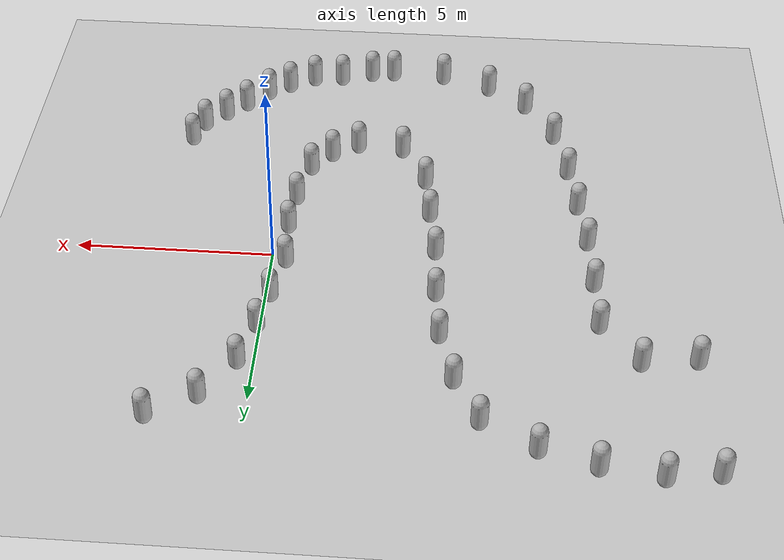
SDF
<sdf version="1.10">
 <world name="empty">
  <model name="ground_plane">
   <static>true</static>
   <link name="link">
    <collision name="collision">
     <geometry><plane><normal>0 0 1</normal><size>100 100</size></plane></geometry>
    </collision>
    <visual name="visual">
     <geometry><plane><normal>0 0 1</normal><size>100 100</size></plane></geometry>
     <material>
      <ambient>0.800000012 0.800000012 0.800000012 1</ambient>
      <diffuse>0.800000012 0.800000012 0.800000012 1</diffuse>
      <specular>0.800000012 0.800000012 0.800000012 1</specular>
     </material>
    </visual>
    <inertial>
     <mass>1</mass>
     <inertia><ixx>1</ixx><ixy>0</ixy><ixz>0</ixz><iyy>1</iyy><iyz>0</iyz><izz>1</izz></inertia>
    </inertial>
   </link>
  </model>
  <model name="capsule_22">
   <pose>2.2410211586859279 5.8455925256962518 0.49999999970893311 0 0 0</pose>
   <link name="capsule_link">
    <inertial>
     <inertia>
      <ixx>0.074153999999999998</ixx>
      <ixy>0</ixy>
      <ixz>0</ixz>
      <iyy>0.074153999999999998</iyy>
      <iyz>0</iyz>
      <izz>0.018769000000000001</izz>
     </inertia>
     <mass>1</mass>
    </inertial>
    <collision name="capsule_collision">
     <geometry>
      <capsule><radius>0.20000000000000001</radius><length>0.59999999999999998</length></capsule>
     </geometry>
    </collision>
    <visual name="capsule_visual">
     <geometry>
      <capsule><radius>0.20000000000000001</radius><length>0.59999999999999998</length></capsule>
     </geometry>
     <material>
      <ambient>0.300000012 0.300000012 0.300000012 1</ambient>
      <diffuse>0.699999988 0.699999988 0.699999988 1</diffuse>
      <specular>1 1 1 1</specular>
     </material>
    </visual>
   </link>
   <static>false</static>
  </model>
  <model name="capsule_23">
   <pose>1.1205332928616789 5.148689651645503 0.49999999970893311 0 0 0</pose>
   <link name="capsule_link">
    <inertial>
     <inertia>
      <ixx>0.074153999999999998</ixx>
      <ixy>0</ixy>
      <ixz>0</ixz>
      <iyy>0.074153999999999998</iyy>
      <iyz>0</iyz>
      <izz>0.018769000000000001</izz>
     </inertia>
     <mass>1</mass>
    </inertial>
    <collision name="capsule_collision">
     <geometry>
      <capsule><radius>0.20000000000000001</radius><length>0.59999999999999998</length></capsule>
     </geometry>
    </collision>
    <visual name="capsule_visual">
     <geometry>
      <capsule><radius>0.20000000000000001</radius><length>0.59999999999999998</length></capsule>
     </geometry>
     <material>
      <ambient>0.300000012 0.300000012 0.300000012 1</ambient>
      <diffuse>0.699999988 0.699999988 0.699999988 1</diffuse>
      <specular>1 1 1 1</specular>
     </material>
    </visual>
   </link>
   <static>false</static>
  </model>
  <model name="capsule_24">
   <pose>0.36715474724769592 3.9862101078033447 0.499999999902001 0 0 0</pose>
   <link name="capsule_link">
    <inertial>
     <inertia>
      <ixx>0.074153999999999998</ixx>
      <ixy>0</ixy>
      <ixz>0</ixz>
      <iyy>0.074153999999999998</iyy>
      <iyz>0</iyz>
      <izz>0.018769000000000001</izz>
     </inertia>
     <mass>1</mass>
    </inertial>
    <collision name="capsule_collision">
     <geometry>
      <capsule><radius>0.20000000000000001</radius><length>0.59999999999999998</length></capsule>
     </geometry>
    </collision>
    <visual name="capsule_visual">
     <geometry>
      <capsule><radius>0.20000000000000001</radius><length>0.59999999999999998</length></capsule>
     </geometry>
     <material>
      <ambient>0.300000012 0.300000012 0.300000012 1</ambient>
      <diffuse>0.699999988 0.699999988 0.699999988 1</diffuse>
      <specular>1 1 1 1</specular>
     </material>
    </visual>
   </link>
   <static>false</static>
  </model>
  <model name="capsule_25">
   <pose>0.054870724678039551 2.7515799999237061 0.499999999902001 0 0 0</pose>
   <link name="capsule_link">
    <inertial>
     <inertia>
      <ixx>0.074153999999999998</ixx>
      <ixy>0</ixy>
      <ixz>0</ixz>
      <iyy>0.074153999999999998</iyy>
      <iyz>0</iyz>
      <izz>0.018769000000000001</izz>
     </inertia>
     <mass>1</mass>
    </inertial>
    <collision name="capsule_collision">
     <geometry>
      <capsule><radius>0.20000000000000001</radius><length>0.59999999999999998</length></capsule>
     </geometry>
    </collision>
    <visual name="capsule_visual">
     <geometry>
      <capsule><radius>0.20000000000000001</radius><length>0.59999999999999998</length></capsule>
     </geometry>
     <material>
      <ambient>0.300000012 0.300000012 0.300000012 1</ambient>
      <diffuse>0.699999988 0.699999988 0.699999988 1</diffuse>
      <specular>1 1 1 1</specular>
     </material>
    </visual>
   </link>
   <static>false</static>
  </model>
  <model name="capsule_26">
   <pose>-0.14112371206283569 1.6486799716949463 0.499999999902001 0 0 0</pose>
   <link name="capsule_link">
    <inertial>
     <inertia>
      <ixx>0.074153999999999998</ixx>
      <ixy>0</ixy>
      <ixz>0</ixz>
      <iyy>0.074153999999999998</iyy>
      <iyz>0</iyz>
      <izz>0.018769000000000001</izz>
     </inertia>
     <mass>1</mass>
    </inertial>
    <collision name="capsule_collision">
     <geometry>
      <capsule><radius>0.20000000000000001</radius><length>0.59999999999999998</length></capsule>
     </geometry>
    </collision>
    <visual name="capsule_visual">
     <geometry>
      <capsule><radius>0.20000000000000001</radius><length>0.59999999999999998</length></capsule>
     </geometry>
     <material>
      <ambient>0.300000012 0.300000012 0.300000012 1</ambient>
      <diffuse>0.699999988 0.699999988 0.699999988 1</diffuse>
      <specular>1 1 1 1</specular>
     </material>
    </visual>
   </link>
   <static>false</static>
  </model>
  <model name="capsule_28">
   <pose>-0.30919864773750305 -0.95390701293945312 0.499999999902001 0 0 0</pose>
   <link name="capsule_link">
    <inertial>
     <inertia>
      <ixx>0.074153999999999998</ixx>
      <ixy>0</ixy>
      <ixz>0</ixz>
      <iyy>0.074153999999999998</iyy>
      <iyz>0</iyz>
      <izz>0.018769000000000001</izz>
     </inertia>
     <mass>1</mass>
    </inertial>
    <collision name="capsule_collision">
     <geometry>
      <capsule><radius>0.20000000000000001</radius><length>0.59999999999999998</length></capsule>
     </geometry>
    </collision>
    <visual name="capsule_visual">
     <geometry>
      <capsule><radius>0.20000000000000001</radius><length>0.59999999999999998</length></capsule>
     </geometry>
     <material>
      <ambient>0.300000012 0.300000012 0.300000012 1</ambient>
      <diffuse>0.699999988 0.699999988 0.699999988 1</diffuse>
      <specular>1 1 1 1</specular>
     </material>
    </visual>
   </link>
   <static>false</static>
  </model>
  <model name="capsule_29">
   <pose>-0.40292990153900821 -2.1101880470823815 0.49999999970893311 0 0 0</pose>
   <link name="capsule_link">
    <inertial>
     <inertia>
      <ixx>0.074153999999999998</ixx>
      <ixy>0</ixy>
      <ixz>0</ixz>
      <iyy>0.074153999999999998</iyy>
      <iyz>0</iyz>
      <izz>0.018769000000000001</izz>
     </inertia>
     <mass>1</mass>
    </inertial>
    <collision name="capsule_collision">
     <geometry>
      <capsule><radius>0.20000000000000001</radius><length>0.59999999999999998</length></capsule>
     </geometry>
    </collision>
    <visual name="capsule_visual">
     <geometry>
      <capsule><radius>0.20000000000000001</radius><length>0.59999999999999998</length></capsule>
     </geometry>
     <material>
      <ambient>0.300000012 0.300000012 0.300000012 1</ambient>
      <diffuse>0.699999988 0.699999988 0.699999988 1</diffuse>
      <specular>1 1 1 1</specular>
     </material>
    </visual>
   </link>
   <static>false</static>
  </model>
  <model name="capsule_30">
   <pose>-0.66683764251256505 -3.3827567634728442 0.49999999970893311 0 0 0</pose>
   <link name="capsule_link">
    <inertial>
     <inertia>
      <ixx>0.074153999999999998</ixx>
      <ixy>0</ixy>
      <ixz>0</ixz>
      <iyy>0.074153999999999998</iyy>
      <iyz>0</iyz>
      <izz>0.018769000000000001</izz>
     </inertia>
     <mass>1</mass>
    </inertial>
    <collision name="capsule_collision">
     <geometry>
      <capsule><radius>0.20000000000000001</radius><length>0.59999999999999998</length></capsule>
     </geometry>
    </collision>
    <visual name="capsule_visual">
     <geometry>
      <capsule><radius>0.20000000000000001</radius><length>0.59999999999999998</length></capsule>
     </geometry>
     <material>
      <ambient>0.300000012 0.300000012 0.300000012 1</ambient>
      <diffuse>0.699999988 0.699999988 0.699999988 1</diffuse>
      <specular>1 1 1 1</specular>
     </material>
    </visual>
   </link>
   <static>false</static>
  </model>
  <model name="capsule_31">
   <pose>-1.8538862618608611 -4.4385699608616376 0.49999999970893311 0 0 0</pose>
   <link name="capsule_link">
    <inertial>
     <inertia>
      <ixx>0.074153999999999998</ixx>
      <ixy>0</ixy>
      <ixz>0</ixz>
      <iyy>0.074153999999999998</iyy>
      <iyz>0</iyz>
      <izz>0.018769000000000001</izz>
     </inertia>
     <mass>1</mass>
    </inertial>
    <collision name="capsule_collision">
     <geometry>
      <capsule><radius>0.20000000000000001</radius><length>0.59999999999999998</length></capsule>
     </geometry>
    </collision>
    <visual name="capsule_visual">
     <geometry>
      <capsule><radius>0.20000000000000001</radius><length>0.59999999999999998</length></capsule>
     </geometry>
     <material>
      <ambient>0.300000012 0.300000012 0.300000012 1</ambient>
      <diffuse>0.699999988 0.699999988 0.699999988 1</diffuse>
      <specular>1 1 1 1</specular>
     </material>
    </visual>
   </link>
   <static>false</static>
  </model>
  <model name="capsule_32">
   <pose>-3.0619314543279872 -4.3157870934911537 0.49999999970893311 0 0 0</pose>
   <link name="capsule_link">
    <inertial>
     <inertia>
      <ixx>0.074153999999999998</ixx>
      <ixy>0</ixy>
      <ixz>0</ixz>
      <iyy>0.074153999999999998</iyy>
      <iyz>0</iyz>
      <izz>0.018769000000000001</izz>
     </inertia>
     <mass>1</mass>
    </inertial>
    <collision name="capsule_collision">
     <geometry>
      <capsule><radius>0.20000000000000001</radius><length>0.59999999999999998</length></capsule>
     </geometry>
    </collision>
    <visual name="capsule_visual">
     <geometry>
      <capsule><radius>0.20000000000000001</radius><length>0.59999999999999998</length></capsule>
     </geometry>
     <material>
      <ambient>0.300000012 0.300000012 0.300000012 1</ambient>
      <diffuse>0.699999988 0.699999988 0.699999988 1</diffuse>
      <specular>1 1 1 1</specular>
     </material>
    </visual>
   </link>
   <static>false</static>
  </model>
  <model name="capsule_33">
   <pose>-3.7359690886875785 -3.0206758947746262 0.49999999970893311 0 0 0</pose>
   <link name="capsule_link">
    <inertial>
     <inertia>
      <ixx>0.074153999999999998</ixx>
      <ixy>0</ixy>
      <ixz>0</ixz>
      <iyy>0.074153999999999998</iyy>
      <iyz>0</iyz>
      <izz>0.018769000000000001</izz>
     </inertia>
     <mass>1</mass>
    </inertial>
    <collision name="capsule_collision">
     <geometry>
      <capsule><radius>0.20000000000000001</radius><length>0.59999999999999998</length></capsule>
     </geometry>
    </collision>
    <visual name="capsule_visual">
     <geometry>
      <capsule><radius>0.20000000000000001</radius><length>0.59999999999999998</length></capsule>
     </geometry>
     <material>
      <ambient>0.300000012 0.300000012 0.300000012 1</ambient>
      <diffuse>0.699999988 0.699999988 0.699999988 1</diffuse>
      <specular>1 1 1 1</specular>
     </material>
    </visual>
   </link>
   <static>false</static>
  </model>
  <model name="capsule_34">
   <pose>-3.9136007308902969 -1.6616885756400075 0.49999999970893311 0 0 0</pose>
   <link name="capsule_link">
    <inertial>
     <inertia>
      <ixx>0.074153999999999998</ixx>
      <ixy>0</ixy>
      <ixz>0</ixz>
      <iyy>0.074153999999999998</iyy>
      <iyz>0</iyz>
      <izz>0.018769000000000001</izz>
     </inertia>
     <mass>1</mass>
    </inertial>
    <collision name="capsule_collision">
     <geometry>
      <capsule><radius>0.20000000000000001</radius><length>0.59999999999999998</length></capsule>
     </geometry>
    </collision>
    <visual name="capsule_visual">
     <geometry>
      <capsule><radius>0.20000000000000001</radius><length>0.59999999999999998</length></capsule>
     </geometry>
     <material>
      <ambient>0.300000012 0.300000012 0.300000012 1</ambient>
      <diffuse>0.699999988 0.699999988 0.699999988 1</diffuse>
      <specular>1 1 1 1</specular>
     </material>
    </visual>
   </link>
   <static>false</static>
  </model>
  <model name="capsule_35">
   <pose>-4.111023931562845 -0.20660173922643699 0.49999999970893311 0 0 0</pose>
   <link name="capsule_link">
    <inertial>
     <inertia>
      <ixx>0.074153999999999998</ixx>
      <ixy>0</ixy>
      <ixz>0</ixz>
      <iyy>0.074153999999999998</iyy>
      <iyz>0</iyz>
      <izz>0.018769000000000001</izz>
     </inertia>
     <mass>1</mass>
    </inertial>
    <collision name="capsule_collision">
     <geometry>
      <capsule><radius>0.20000000000000001</radius><length>0.59999999999999998</length></capsule>
     </geometry>
    </collision>
    <visual name="capsule_visual">
     <geometry>
      <capsule><radius>0.20000000000000001</radius><length>0.59999999999999998</length></capsule>
     </geometry>
     <material>
      <ambient>0.300000012 0.300000012 0.300000012 1</ambient>
      <diffuse>0.699999988 0.699999988 0.699999988 1</diffuse>
      <specular>1 1 1 1</specular>
     </material>
    </visual>
   </link>
   <static>false</static>
  </model>
  <model name="capsule_36">
   <pose>-4.1761549505182636 1.3268821165121976 0.49999999970893311 0 0 0</pose>
   <link name="capsule_link">
    <inertial>
     <inertia>
      <ixx>0.074153999999999998</ixx>
      <ixy>0</ixy>
      <ixz>0</ixz>
      <iyy>0.074153999999999998</iyy>
      <iyz>0</iyz>
      <izz>0.018769000000000001</izz>
     </inertia>
     <mass>1</mass>
    </inertial>
    <collision name="capsule_collision">
     <geometry>
      <capsule><radius>0.20000000000000001</radius><length>0.59999999999999998</length></capsule>
     </geometry>
    </collision>
    <visual name="capsule_visual">
     <geometry>
      <capsule><radius>0.20000000000000001</radius><length>0.59999999999999998</length></capsule>
     </geometry>
     <material>
      <ambient>0.300000012 0.300000012 0.300000012 1</ambient>
      <diffuse>0.699999988 0.699999988 0.699999988 1</diffuse>
      <specular>1 1 1 1</specular>
     </material>
    </visual>
   </link>
   <static>false</static>
  </model>
  <model name="capsule_37">
   <pose>-4.3167518290005216 2.7823156699431575 0.49999999970893311 0 0 0</pose>
   <link name="capsule_link">
    <inertial>
     <inertia>
      <ixx>0.074153999999999998</ixx>
      <ixy>0</ixy>
      <ixz>0</ixz>
      <iyy>0.074153999999999998</iyy>
      <iyz>0</iyz>
      <izz>0.018769000000000001</izz>
     </inertia>
     <mass>1</mass>
    </inertial>
    <collision name="capsule_collision">
     <geometry>
      <capsule><radius>0.20000000000000001</radius><length>0.59999999999999998</length></capsule>
     </geometry>
    </collision>
    <visual name="capsule_visual">
     <geometry>
      <capsule><radius>0.20000000000000001</radius><length>0.59999999999999998</length></capsule>
     </geometry>
     <material>
      <ambient>0.300000012 0.300000012 0.300000012 1</ambient>
      <diffuse>0.699999988 0.699999988 0.699999988 1</diffuse>
      <specular>1 1 1 1</specular>
     </material>
    </visual>
   </link>
   <static>false</static>
  </model>
  <model name="capsule_38">
   <pose>2.4606900215148926 -5.1342496871948242 0.499999999902001 0 0 0</pose>
   <link name="capsule_link">
    <inertial>
     <inertia>
      <ixx>0.074153999999999998</ixx>
      <ixy>0</ixy>
      <ixz>0</ixz>
      <iyy>0.074153999999999998</iyy>
      <iyz>0</iyz>
      <izz>0.018769000000000001</izz>
     </inertia>
     <mass>1</mass>
    </inertial>
    <collision name="capsule_collision">
     <geometry>
      <capsule><radius>0.20000000000000001</radius><length>0.59999999999999998</length></capsule>
     </geometry>
    </collision>
    <visual name="capsule_visual">
     <geometry>
      <capsule><radius>0.20000000000000001</radius><length>0.59999999999999998</length></capsule>
     </geometry>
     <material>
      <ambient>0.300000012 0.300000012 0.300000012 1</ambient>
      <diffuse>0.699999988 0.699999988 0.699999988 1</diffuse>
      <specular>1 1 1 1</specular>
     </material>
    </visual>
   </link>
   <static>false</static>
  </model>
  <model name="capsule_39">
   <pose>1.4277786796006073 -6.136858015472157 0.49999999970893311 0 0 0</pose>
   <link name="capsule_link">
    <inertial>
     <inertia>
      <ixx>0.074153999999999998</ixx>
      <ixy>0</ixy>
      <ixz>0</ixz>
      <iyy>0.074153999999999998</iyy>
      <iyz>0</iyz>
      <izz>0.018769000000000001</izz>
     </inertia>
     <mass>1</mass>
    </inertial>
    <collision name="capsule_collision">
     <geometry>
      <capsule><radius>0.20000000000000001</radius><length>0.59999999999999998</length></capsule>
     </geometry>
    </collision>
    <visual name="capsule_visual">
     <geometry>
      <capsule><radius>0.20000000000000001</radius><length>0.59999999999999998</length></capsule>
     </geometry>
     <material>
      <ambient>0.300000012 0.300000012 0.300000012 1</ambient>
      <diffuse>0.699999988 0.699999988 0.699999988 1</diffuse>
      <specular>1 1 1 1</specular>
     </material>
    </visual>
   </link>
   <static>false</static>
  </model>
  <model name="capsule_40">
   <pose>0.30902623896461634 -7.1213518557991984 0.49999999970893311 0 0 0</pose>
   <link name="capsule_link">
    <inertial>
     <inertia>
      <ixx>0.074153999999999998</ixx>
      <ixy>0</ixy>
      <ixz>0</ixz>
      <iyy>0.074153999999999998</iyy>
      <iyz>0</iyz>
      <izz>0.018769000000000001</izz>
     </inertia>
     <mass>1</mass>
    </inertial>
    <collision name="capsule_collision">
     <geometry>
      <capsule><radius>0.20000000000000001</radius><length>0.59999999999999998</length></capsule>
     </geometry>
    </collision>
    <visual name="capsule_visual">
     <geometry>
      <capsule><radius>0.20000000000000001</radius><length>0.59999999999999998</length></capsule>
     </geometry>
     <material>
      <ambient>0.300000012 0.300000012 0.300000012 1</ambient>
      <diffuse>0.699999988 0.699999988 0.699999988 1</diffuse>
      <specular>1 1 1 1</specular>
     </material>
    </visual>
   </link>
   <static>false</static>
  </model>
  <model name="capsule_41">
   <pose>-1.1491758737618332 -7.5851104395704372 0.49999999970893311 0 0 0</pose>
   <link name="capsule_link">
    <inertial>
     <inertia>
      <ixx>0.074153999999999998</ixx>
      <ixy>0</ixy>
      <ixz>0</ixz>
      <iyy>0.074153999999999998</iyy>
      <iyz>0</iyz>
      <izz>0.018769000000000001</izz>
     </inertia>
     <mass>1</mass>
    </inertial>
    <collision name="capsule_collision">
     <geometry>
      <capsule><radius>0.20000000000000001</radius><length>0.59999999999999998</length></capsule>
     </geometry>
    </collision>
    <visual name="capsule_visual">
     <geometry>
      <capsule><radius>0.20000000000000001</radius><length>0.59999999999999998</length></capsule>
     </geometry>
     <material>
      <ambient>0.300000012 0.300000012 0.300000012 1</ambient>
      <diffuse>0.699999988 0.699999988 0.699999988 1</diffuse>
      <specular>1 1 1 1</specular>
     </material>
    </visual>
   </link>
   <static>false</static>
  </model>
  <model name="capsule_42">
   <pose>-2.6087609474039706 -7.9117986359347228 0.49999999970893311 0 0 0</pose>
   <link name="capsule_link">
    <inertial>
     <inertia>
      <ixx>0.074153999999999998</ixx>
      <ixy>0</ixy>
      <ixz>0</ixz>
      <iyy>0.074153999999999998</iyy>
      <iyz>0</iyz>
      <izz>0.018769000000000001</izz>
     </inertia>
     <mass>1</mass>
    </inertial>
    <collision name="capsule_collision">
     <geometry>
      <capsule><radius>0.20000000000000001</radius><length>0.59999999999999998</length></capsule>
     </geometry>
    </collision>
    <visual name="capsule_visual">
     <geometry>
      <capsule><radius>0.20000000000000001</radius><length>0.59999999999999998</length></capsule>
     </geometry>
     <material>
      <ambient>0.300000012 0.300000012 0.300000012 1</ambient>
      <diffuse>0.699999988 0.699999988 0.699999988 1</diffuse>
      <specular>1 1 1 1</specular>
     </material>
    </visual>
   </link>
   <static>false</static>
  </model>
  <model name="capsule_43">
   <pose>-4.0454748396139184 -7.8492872725995255 0.49999999970893311 0 0 0</pose>
   <link name="capsule_link">
    <inertial>
     <inertia>
      <ixx>0.074153999999999998</ixx>
      <ixy>0</ixy>
      <ixz>0</ixz>
      <iyy>0.074153999999999998</iyy>
      <iyz>0</iyz>
      <izz>0.018769000000000001</izz>
     </inertia>
     <mass>1</mass>
    </inertial>
    <collision name="capsule_collision">
     <geometry>
      <capsule><radius>0.20000000000000001</radius><length>0.59999999999999998</length></capsule>
     </geometry>
    </collision>
    <visual name="capsule_visual">
     <geometry>
      <capsule><radius>0.20000000000000001</radius><length>0.59999999999999998</length></capsule>
     </geometry>
     <material>
      <ambient>0.300000012 0.300000012 0.300000012 1</ambient>
      <diffuse>0.699999988 0.699999988 0.699999988 1</diffuse>
      <specular>1 1 1 1</specular>
     </material>
    </visual>
   </link>
   <static>false</static>
  </model>
  <model name="capsule_44">
   <pose>-5.3499430014965945 -7.3704719539631158 0.49999999970893311 0 0 0</pose>
   <link name="capsule_link">
    <inertial>
     <inertia>
      <ixx>0.074153999999999998</ixx>
      <ixy>0</ixy>
      <ixz>0</ixz>
      <iyy>0.074153999999999998</iyy>
      <iyz>0</iyz>
      <izz>0.018769000000000001</izz>
     </inertia>
     <mass>1</mass>
    </inertial>
    <collision name="capsule_collision">
     <geometry>
      <capsule><radius>0.20000000000000001</radius><length>0.59999999999999998</length></capsule>
     </geometry>
    </collision>
    <visual name="capsule_visual">
     <geometry>
      <capsule><radius>0.20000000000000001</radius><length>0.59999999999999998</length></capsule>
     </geometry>
     <material>
      <ambient>0.300000012 0.300000012 0.300000012 1</ambient>
      <diffuse>0.699999988 0.699999988 0.699999988 1</diffuse>
      <specular>1 1 1 1</specular>
     </material>
    </visual>
   </link>
   <static>false</static>
  </model>
  <model name="capsule_45">
   <pose>-6.3835868845907884 -6.5850210009494328 0.49999999970893311 0 0 0</pose>
   <link name="capsule_link">
    <inertial>
     <inertia>
      <ixx>0.074153999999999998</ixx>
      <ixy>0</ixy>
      <ixz>0</ixz>
      <iyy>0.074153999999999998</iyy>
      <iyz>0</iyz>
      <izz>0.018769000000000001</izz>
     </inertia>
     <mass>1</mass>
    </inertial>
    <collision name="capsule_collision">
     <geometry>
      <capsule><radius>0.20000000000000001</radius><length>0.59999999999999998</length></capsule>
     </geometry>
    </collision>
    <visual name="capsule_visual">
     <geometry>
      <capsule><radius>0.20000000000000001</radius><length>0.59999999999999998</length></capsule>
     </geometry>
     <material>
      <ambient>0.300000012 0.300000012 0.300000012 1</ambient>
      <diffuse>0.699999988 0.699999988 0.699999988 1</diffuse>
      <specular>1 1 1 1</specular>
     </material>
    </visual>
   </link>
   <static>false</static>
  </model>
  <model name="capsule_46">
   <pose>-7.151202088566734 -5.24470062890338 0.49999999970893311 0 0 0</pose>
   <link name="capsule_link">
    <inertial>
     <inertia>
      <ixx>0.074153999999999998</ixx>
      <ixy>0</ixy>
      <ixz>0</ixz>
      <iyy>0.074153999999999998</iyy>
      <iyz>0</iyz>
      <izz>0.018769000000000001</izz>
     </inertia>
     <mass>1</mass>
    </inertial>
    <collision name="capsule_collision">
     <geometry>
      <capsule><radius>0.20000000000000001</radius><length>0.59999999999999998</length></capsule>
     </geometry>
    </collision>
    <visual name="capsule_visual">
     <geometry>
      <capsule><radius>0.20000000000000001</radius><length>0.59999999999999998</length></capsule>
     </geometry>
     <material>
      <ambient>0.300000012 0.300000012 0.300000012 1</ambient>
      <diffuse>0.699999988 0.699999988 0.699999988 1</diffuse>
      <specular>1 1 1 1</specular>
     </material>
    </visual>
   </link>
   <static>false</static>
  </model>
  <model name="capsule_47">
   <pose>-7.5092744102022229 -3.7053056780459031 0.49999999970893311 0 0 0</pose>
   <link name="capsule_link">
    <inertial>
     <inertia>
      <ixx>0.074153999999999998</ixx>
      <ixy>0</ixy>
      <ixz>0</ixz>
      <iyy>0.074153999999999998</iyy>
      <iyz>0</iyz>
      <izz>0.018769000000000001</izz>
     </inertia>
     <mass>1</mass>
    </inertial>
    <collision name="capsule_collision">
     <geometry>
      <capsule><radius>0.20000000000000001</radius><length>0.59999999999999998</length></capsule>
     </geometry>
    </collision>
    <visual name="capsule_visual">
     <geometry>
      <capsule><radius>0.20000000000000001</radius><length>0.59999999999999998</length></capsule>
     </geometry>
     <material>
      <ambient>0.300000012 0.300000012 0.300000012 1</ambient>
      <diffuse>0.699999988 0.699999988 0.699999988 1</diffuse>
      <specular>1 1 1 1</specular>
     </material>
    </visual>
   </link>
   <static>false</static>
  </model>
  <model name="capsule_48">
   <pose>-7.7253568550493883 -2.2453464417871847 0.49999999970893311 0 0 0</pose>
   <link name="capsule_link">
    <inertial>
     <inertia>
      <ixx>0.074153999999999998</ixx>
      <ixy>0</ixy>
      <ixz>0</ixz>
      <iyy>0.074153999999999998</iyy>
      <iyz>0</iyz>
      <izz>0.018769000000000001</izz>
     </inertia>
     <mass>1</mass>
    </inertial>
    <collision name="capsule_collision">
     <geometry>
      <capsule><radius>0.20000000000000001</radius><length>0.59999999999999998</length></capsule>
     </geometry>
    </collision>
    <visual name="capsule_visual">
     <geometry>
      <capsule><radius>0.20000000000000001</radius><length>0.59999999999999998</length></capsule>
     </geometry>
     <material>
      <ambient>0.300000012 0.300000012 0.300000012 1</ambient>
      <diffuse>0.699999988 0.699999988 0.699999988 1</diffuse>
      <specular>1 1 1 1</specular>
     </material>
    </visual>
   </link>
   <static>false</static>
  </model>
  <model name="capsule_49">
   <pose>-7.9444842494851269 -0.84214427424519833 0.49999999970893311 0 0 0</pose>
   <link name="capsule_link">
    <inertial>
     <inertia>
      <ixx>0.074153999999999998</ixx>
      <ixy>0</ixy>
      <ixz>0</ixz>
      <iyy>0.074153999999999998</iyy>
      <iyz>0</iyz>
      <izz>0.018769000000000001</izz>
     </inertia>
     <mass>1</mass>
    </inertial>
    <collision name="capsule_collision">
     <geometry>
      <capsule><radius>0.20000000000000001</radius><length>0.59999999999999998</length></capsule>
     </geometry>
    </collision>
    <visual name="capsule_visual">
     <geometry>
      <capsule><radius>0.20000000000000001</radius><length>0.59999999999999998</length></capsule>
     </geometry>
     <material>
      <ambient>0.300000012 0.300000012 0.300000012 1</ambient>
      <diffuse>0.699999988 0.699999988 0.699999988 1</diffuse>
      <specular>1 1 1 1</specular>
     </material>
    </visual>
   </link>
   <static>false</static>
  </model>
  <model name="capsule_50">
   <pose>-8.0543399608816379 0.70126440235399068 0.49999999970893311 0 0 0</pose>
   <link name="capsule_link">
    <inertial>
     <inertia>
      <ixx>0.074153999999999998</ixx>
      <ixy>0</ixy>
      <ixz>0</ixz>
      <iyy>0.074153999999999998</iyy>
      <iyz>0</iyz>
      <izz>0.018769000000000001</izz>
     </inertia>
     <mass>1</mass>
    </inertial>
    <collision name="capsule_collision">
     <geometry>
      <capsule><radius>0.20000000000000001</radius><length>0.59999999999999998</length></capsule>
     </geometry>
    </collision>
    <visual name="capsule_visual">
     <geometry>
      <capsule><radius>0.20000000000000001</radius><length>0.59999999999999998</length></capsule>
     </geometry>
     <material>
      <ambient>0.300000012 0.300000012 0.300000012 1</ambient>
      <diffuse>0.699999988 0.699999988 0.699999988 1</diffuse>
      <specular>1 1 1 1</specular>
     </material>
    </visual>
   </link>
   <static>false</static>
  </model>
  <model name="capsule_51">
   <pose>-8.133668301421551 2.1621473446861521 0.49999999970893311 0 0 0</pose>
   <link name="capsule_link">
    <inertial>
     <inertia>
      <ixx>0.074153999999999998</ixx>
      <ixy>0</ixy>
      <ixz>0</ixz>
      <iyy>0.074153999999999998</iyy>
      <iyz>0</iyz>
      <izz>0.018769000000000001</izz>
     </inertia>
     <mass>1</mass>
    </inertial>
    <collision name="capsule_collision">
     <geometry>
      <capsule><radius>0.20000000000000001</radius><length>0.59999999999999998</length></capsule>
     </geometry>
    </collision>
    <visual name="capsule_visual">
     <geometry>
      <capsule><radius>0.20000000000000001</radius><length>0.59999999999999998</length></capsule>
     </geometry>
     <material>
      <ambient>0.300000012 0.300000012 0.300000012 1</ambient>
      <diffuse>0.699999988 0.699999988 0.699999988 1</diffuse>
      <specular>1 1 1 1</specular>
     </material>
    </visual>
   </link>
   <static>false</static>
  </model>
  <model name="capsule_52">
   <pose>-9.0635232539598647 3.3592041852973571 0.49999999970893311 0 0 0</pose>
   <link name="capsule_link">
    <inertial>
     <inertia>
      <ixx>0.074153999999999998</ixx>
      <ixy>0</ixy>
      <ixz>0</ixz>
      <iyy>0.074153999999999998</iyy>
      <iyz>0</iyz>
      <izz>0.018769000000000001</izz>
     </inertia>
     <mass>1</mass>
    </inertial>
    <collision name="capsule_collision">
     <geometry>
      <capsule><radius>0.20000000000000001</radius><length>0.59999999999999998</length></capsule>
     </geometry>
    </collision>
    <visual name="capsule_visual">
     <geometry>
      <capsule><radius>0.20000000000000001</radius><length>0.59999999999999998</length></capsule>
     </geometry>
     <material>
      <ambient>0.300000012 0.300000012 0.300000012 1</ambient>
      <diffuse>0.699999988 0.699999988 0.699999988 1</diffuse>
      <specular>1 1 1 1</specular>
     </material>
    </visual>
   </link>
   <static>false</static>
  </model>
  <model name="capsule_53">
   <pose>-10.406988290166627 3.1960569281330056 0.49999999970893311 0 0 0</pose>
   <link name="capsule_link">
    <inertial>
     <inertia>
      <ixx>0.074153999999999998</ixx>
      <ixy>0</ixy>
      <ixz>0</ixz>
      <iyy>0.074153999999999998</iyy>
      <iyz>0</iyz>
      <izz>0.018769000000000001</izz>
     </inertia>
     <mass>1</mass>
    </inertial>
    <collision name="capsule_collision">
     <geometry>
      <capsule><radius>0.20000000000000001</radius><length>0.59999999999999998</length></capsule>
     </geometry>
    </collision>
    <visual name="capsule_visual">
     <geometry>
      <capsule><radius>0.20000000000000001</radius><length>0.59999999999999998</length></capsule>
     </geometry>
     <material>
      <ambient>0.300000012 0.300000012 0.300000012 1</ambient>
      <diffuse>0.699999988 0.699999988 0.699999988 1</diffuse>
      <specular>1 1 1 1</specular>
     </material>
    </visual>
   </link>
   <static>false</static>
  </model>
  <model name="capsule_54">
   <pose>-4.6987325271913631 4.2416568152282537 0.49999999970893311 0 0 0</pose>
   <link name="capsule_link">
    <inertial>
     <inertia>
      <ixx>0.074153999999999998</ixx>
      <ixy>0</ixy>
      <ixz>0</ixz>
      <iyy>0.074153999999999998</iyy>
      <iyz>0</iyz>
      <izz>0.018769000000000001</izz>
     </inertia>
     <mass>1</mass>
    </inertial>
    <collision name="capsule_collision">
     <geometry>
      <capsule><radius>0.20000000000000001</radius><length>0.59999999999999998</length></capsule>
     </geometry>
    </collision>
    <visual name="capsule_visual">
     <geometry>
      <capsule><radius>0.20000000000000001</radius><length>0.59999999999999998</length></capsule>
     </geometry>
     <material>
      <ambient>0.300000012 0.300000012 0.300000012 1</ambient>
      <diffuse>0.699999988 0.699999988 0.699999988 1</diffuse>
      <specular>1 1 1 1</specular>
     </material>
    </visual>
   </link>
   <static>false</static>
  </model>
  <model name="capsule_55">
   <pose>-5.3272928059358069 5.4728657916276644 0.49999999970893311 0 0 0</pose>
   <link name="capsule_link">
    <inertial>
     <inertia>
      <ixx>0.074153999999999998</ixx>
      <ixy>0</ixy>
      <ixz>0</ixz>
      <iyy>0.074153999999999998</iyy>
      <iyz>0</iyz>
      <izz>0.018769000000000001</izz>
     </inertia>
     <mass>1</mass>
    </inertial>
    <collision name="capsule_collision">
     <geometry>
      <capsule><radius>0.20000000000000001</radius><length>0.59999999999999998</length></capsule>
     </geometry>
    </collision>
    <visual name="capsule_visual">
     <geometry>
      <capsule><radius>0.20000000000000001</radius><length>0.59999999999999998</length></capsule>
     </geometry>
     <material>
      <ambient>0.300000012 0.300000012 0.300000012 1</ambient>
      <diffuse>0.699999988 0.699999988 0.699999988 1</diffuse>
      <specular>1 1 1 1</specular>
     </material>
    </visual>
   </link>
   <static>false</static>
  </model>
  <model name="capsule_56">
   <pose>-6.6353722595975215 6.219936998346852 0.49999999970893311 0 0 0</pose>
   <link name="capsule_link">
    <inertial>
     <inertia>
      <ixx>0.074153999999999998</ixx>
      <ixy>0</ixy>
      <ixz>0</ixz>
      <iyy>0.074153999999999998</iyy>
      <iyz>0</iyz>
      <izz>0.018769000000000001</izz>
     </inertia>
     <mass>1</mass>
    </inertial>
    <collision name="capsule_collision">
     <geometry>
      <capsule><radius>0.20000000000000001</radius><length>0.59999999999999998</length></capsule>
     </geometry>
    </collision>
    <visual name="capsule_visual">
     <geometry>
      <capsule><radius>0.20000000000000001</radius><length>0.59999999999999998</length></capsule>
     </geometry>
     <material>
      <ambient>0.300000012 0.300000012 0.300000012 1</ambient>
      <diffuse>0.699999988 0.699999988 0.699999988 1</diffuse>
      <specular>1 1 1 1</specular>
     </material>
    </visual>
   </link>
   <static>false</static>
  </model>
  <model name="capsule_57">
   <pose>-7.9635487807413075 6.63476376183496 0.49999999970893311 0 0 0</pose>
   <link name="capsule_link">
    <inertial>
     <inertia>
      <ixx>0.074153999999999998</ixx>
      <ixy>0</ixy>
      <ixz>0</ixz>
      <iyy>0.074153999999999998</iyy>
      <iyz>0</iyz>
      <izz>0.018769000000000001</izz>
     </inertia>
     <mass>1</mass>
    </inertial>
    <collision name="capsule_collision">
     <geometry>
      <capsule><radius>0.20000000000000001</radius><length>0.59999999999999998</length></capsule>
     </geometry>
    </collision>
    <visual name="capsule_visual">
     <geometry>
      <capsule><radius>0.20000000000000001</radius><length>0.59999999999999998</length></capsule>
     </geometry>
     <material>
      <ambient>0.300000012 0.300000012 0.300000012 1</ambient>
      <diffuse>0.699999988 0.699999988 0.699999988 1</diffuse>
      <specular>1 1 1 1</specular>
     </material>
    </visual>
   </link>
   <static>false</static>
  </model>
  <model name="capsule_58">
   <pose>-9.3985387470740029 6.8278514270354265 0.49999999970893311 0 0 0</pose>
   <link name="capsule_link">
    <inertial>
     <inertia>
      <ixx>0.074153999999999998</ixx>
      <ixy>0</ixy>
      <ixz>0</ixz>
      <iyy>0.074153999999999998</iyy>
      <iyz>0</iyz>
      <izz>0.018769000000000001</izz>
     </inertia>
     <mass>1</mass>
    </inertial>
    <collision name="capsule_collision">
     <geometry>
      <capsule><radius>0.20000000000000001</radius><length>0.59999999999999998</length></capsule>
     </geometry>
    </collision>
    <visual name="capsule_visual">
     <geometry>
      <capsule><radius>0.20000000000000001</radius><length>0.59999999999999998</length></capsule>
     </geometry>
     <material>
      <ambient>0.300000012 0.300000012 0.300000012 1</ambient>
      <diffuse>0.699999988 0.699999988 0.699999988 1</diffuse>
      <specular>1 1 1 1</specular>
     </material>
    </visual>
   </link>
   <static>false</static>
  </model>
  <model name="capsule_59">
   <pose>-10.630884424231226 6.6370643973520558 0.49999999970893311 0 0 0</pose>
   <link name="capsule_link">
    <inertial>
     <inertia>
      <ixx>0.074153999999999998</ixx>
      <ixy>0</ixy>
      <ixz>0</ixz>
      <iyy>0.074153999999999998</iyy>
      <iyz>0</iyz>
      <izz>0.018769000000000001</izz>
     </inertia>
     <mass>1</mass>
    </inertial>
    <collision name="capsule_collision">
     <geometry>
      <capsule><radius>0.20000000000000001</radius><length>0.59999999999999998</length></capsule>
     </geometry>
    </collision>
    <visual name="capsule_visual">
     <geometry>
      <capsule><radius>0.20000000000000001</radius><length>0.59999999999999998</length></capsule>
     </geometry>
     <material>
      <ambient>0.300000012 0.300000012 0.300000012 1</ambient>
      <diffuse>0.699999988 0.699999988 0.699999988 1</diffuse>
      <specular>1 1 1 1</specular>
     </material>
    </visual>
   </link>
   <static>false</static>
  </model>
  <model name="capsule_27">
   <pose>-0.38106293636721733 0.38151102855183938 0.49999999970893311 0 0 0</pose>
   <link name="capsule_link">
    <inertial>
     <inertia>
      <ixx>0.074153999999999998</ixx>
      <ixy>0</ixy>
      <ixz>0</ixz>
      <iyy>0.074153999999999998</iyy>
      <iyz>0</iyz>
      <izz>0.018769000000000001</izz>
     </inertia>
     <mass>1</mass>
    </inertial>
    <collision name="capsule_collision">
     <geometry>
      <capsule><radius>0.20000000000000001</radius><length>0.59999999999999998</length></capsule>
     </geometry>
    </collision>
    <visual name="capsule_visual">
     <geometry>
      <capsule><radius>0.20000000000000001</radius><length>0.59999999999999998</length></capsule>
     </geometry>
     <material>
      <ambient>0.300000012 0.300000012 0.300000012 1</ambient>
      <diffuse>0.699999988 0.699999988 0.699999988 1</diffuse>
      <specular>1 1 1 1</specular>
     </material>
    </visual>
   </link>
   <static>false</static>
  </model>
  <model name="capsule_38_1">
   <pose>1.942725761031272 -5.6557791299119291 0.49999999980498194 0 0 0</pose>
   <link name="capsule_link">
    <inertial>
     <inertia>
      <ixx>0.074153999999999998</ixx>
      <ixy>0</ixy>
      <ixz>0</ixz>
      <iyy>0.074153999999999998</iyy>
      <iyz>0</iyz>
      <izz>0.018769000000000001</izz>
     </inertia>
     <mass>1</mass>
    </inertial>
    <collision name="capsule_collision">
     <geometry>
      <capsule><radius>0.20000000000000001</radius><length>0.59999999999999998</length></capsule>
     </geometry>
    </collision>
    <visual name="capsule_visual">
     <geometry>
      <capsule><radius>0.20000000000000001</radius><length>0.59999999999999998</length></capsule>
     </geometry>
     <material>
      <ambient>0.300000012 0.300000012 0.300000012 1</ambient>
      <diffuse>0.699999988 0.699999988 0.699999988 1</diffuse>
      <specular>1 1 1 1</specular>
     </material>
    </visual>
   </link>
   <static>false</static>
  </model>
  <model name="capsule_38_2">
   <pose>0.87242725476551897 -6.7322930857245584 0.49999999980498194 0 0 0</pose>
   <link name="capsule_link">
    <inertial>
     <inertia>
      <ixx>0.074153999999999998</ixx>
      <ixy>0</ixy>
      <ixz>0</ixz>
      <iyy>0.074153999999999998</iyy>
      <iyz>0</iyz>
      <izz>0.018769000000000001</izz>
     </inertia>
     <mass>1</mass>
    </inertial>
    <collision name="capsule_collision">
     <geometry>
      <capsule><radius>0.20000000000000001</radius><length>0.59999999999999998</length></capsule>
     </geometry>
    </collision>
    <visual name="capsule_visual">
     <geometry>
      <capsule><radius>0.20000000000000001</radius><length>0.59999999999999998</length></capsule>
     </geometry>
     <material>
      <ambient>0.300000012 0.300000012 0.300000012 1</ambient>
      <diffuse>0.699999988 0.699999988 0.699999988 1</diffuse>
      <specular>1 1 1 1</specular>
     </material>
    </visual>
   </link>
   <static>false</static>
  </model>
  <model name="capsule_38_3">
   <pose>-1.9923423661773225 -7.8368195304038135 0.49999999980498194 0 0 0</pose>
   <link name="capsule_link">
    <inertial>
     <inertia>
      <ixx>0.074153999999999998</ixx>
      <ixy>0</ixy>
      <ixz>0</ixz>
      <iyy>0.074153999999999998</iyy>
      <iyz>0</iyz>
      <izz>0.018769000000000001</izz>
     </inertia>
     <mass>1</mass>
    </inertial>
    <collision name="capsule_collision">
     <geometry>
      <capsule><radius>0.20000000000000001</radius><length>0.59999999999999998</length></capsule>
     </geometry>
    </collision>
    <visual name="capsule_visual">
     <geometry>
      <capsule><radius>0.20000000000000001</radius><length>0.59999999999999998</length></capsule>
     </geometry>
     <material>
      <ambient>0.300000012 0.300000012 0.300000012 1</ambient>
      <diffuse>0.699999988 0.699999988 0.699999988 1</diffuse>
      <specular>1 1 1 1</specular>
     </material>
    </visual>
   </link>
   <static>false</static>
  </model>
  <model name="capsule_38_4">
   <pose>-0.36210538010275517 -7.493757563947872 0.49999999980498194 0 0 0</pose>
   <link name="capsule_link">
    <inertial>
     <inertia>
      <ixx>0.074153999999999998</ixx>
      <ixy>0</ixy>
      <ixz>0</ixz>
      <iyy>0.074153999999999998</iyy>
      <iyz>0</iyz>
      <izz>0.018769000000000001</izz>
     </inertia>
     <mass>1</mass>
    </inertial>
    <collision name="capsule_collision">
     <geometry>
      <capsule><radius>0.20000000000000001</radius><length>0.59999999999999998</length></capsule>
     </geometry>
    </collision>
    <visual name="capsule_visual">
     <geometry>
      <capsule><radius>0.20000000000000001</radius><length>0.59999999999999998</length></capsule>
     </geometry>
     <material>
      <ambient>0.300000012 0.300000012 0.300000012 1</ambient>
      <diffuse>0.699999988 0.699999988 0.699999988 1</diffuse>
      <specular>1 1 1 1</specular>
     </material>
    </visual>
   </link>
   <static>false</static>
  </model>
  <model name="capsule_38_5">
   <pose>2.7056223025607018 -4.4551498621019761 0.49999999980498194 0 0 0</pose>
   <link name="capsule_link">
    <inertial>
     <inertia>
      <ixx>0.074153999999999998</ixx>
      <ixy>0</ixy>
      <ixz>0</ixz>
      <iyy>0.074153999999999998</iyy>
      <iyz>0</iyz>
      <izz>0.018769000000000001</izz>
     </inertia>
     <mass>1</mass>
    </inertial>
    <collision name="capsule_collision">
     <geometry>
      <capsule><radius>0.20000000000000001</radius><length>0.59999999999999998</length></capsule>
     </geometry>
    </collision>
    <visual name="capsule_visual">
     <geometry>
      <capsule><radius>0.20000000000000001</radius><length>0.59999999999999998</length></capsule>
     </geometry>
     <material>
      <ambient>0.300000012 0.300000012 0.300000012 1</ambient>
      <diffuse>0.699999988 0.699999988 0.699999988 1</diffuse>
      <specular>1 1 1 1</specular>
     </material>
    </visual>
   </link>
   <static>false</static>
  </model>
  <model name="capsule_38_13">
   <pose>-1.1781767606889169 -4.0094352793647303 0.49999999980498194 0 0 0</pose>
   <link name="capsule_link">
    <inertial>
     <inertia>
      <ixx>0.074153999999999998</ixx>
      <ixy>0</ixy>
      <ixz>0</ixz>
      <iyy>0.074153999999999998</iyy>
      <iyz>0</iyz>
      <izz>0.018769000000000001</izz>
     </inertia>
     <mass>1</mass>
    </inertial>
    <collision name="capsule_collision">
     <geometry>
      <capsule><radius>0.20000000000000001</radius><length>0.59999999999999998</length></capsule>
     </geometry>
    </collision>
    <visual name="capsule_visual">
     <geometry>
      <capsule><radius>0.20000000000000001</radius><length>0.59999999999999998</length></capsule>
     </geometry>
     <material>
      <ambient>0.300000012 0.300000012 0.300000012 1</ambient>
      <diffuse>0.699999988 0.699999988 0.699999988 1</diffuse>
      <specular>1 1 1 1</specular>
     </material>
    </visual>
   </link>
   <static>false</static>
  </model>
 </world>
</sdf>
